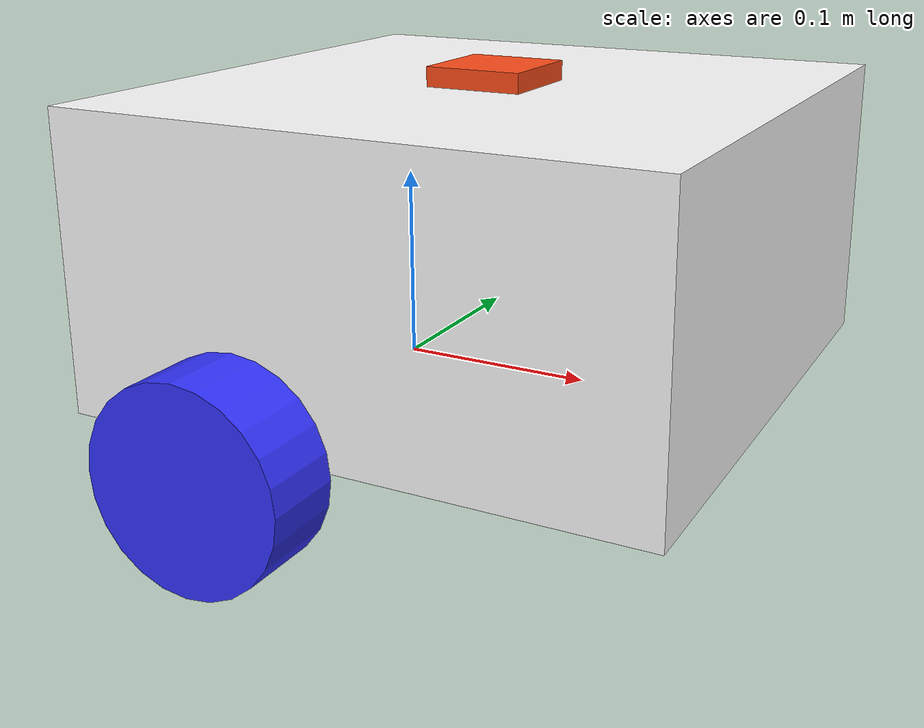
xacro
<?xml version="1.0"?>
<robot xmlns:xacro="http://www.ros.org/wiki/xacro" >

    <xacro:include filename="inertial_macros.xacro"/>

    <material name="white">
        <color rgba="1 1 1 1" />
    </material>

    <material name="orange">
        <color rgba="1 0.3 0.1 1"/>
    </material>

    <material name="blue">
        <color rgba="0.2 0.2 1 1"/>
    </material>

    <material name="black">
        <color rgba="0 0 0 1"/>
    </material>

    <!-- BASE LINK -->

    <link name="base_link">

    </link>

    <!-- CHASSIS LINK -->

    <joint name="chassis_joint" type="fixed">
        <parent link="base_link"/>
        <child link="chassis"/>
        <origin xyz="-0.1 0 0"/>
    </joint>

    <link name="chassis">
        <visual>
            <origin xyz="0.15 0 0.075"/>
            <geometry>
                <box size="0.3 0.3 0.15"/>
            </geometry>
            <material name="white"/>
        </visual>
        <collision>
            <origin xyz="0.15 0 0.075"/>
            <geometry>
                <box size="0.3 0.3 0.15"/>
            </geometry>
        </collision>
        <xacro:inertial_box mass="0.5" x="0.3" y="0.3" z="0.15">
            <origin xyz="0.15 0 0.075" rpy="0 0 0"/>
        </xacro:inertial_box>
    </link>

    <gazebo reference="chassis">
        <material>Gazebo/White</material>
    </gazebo>

    <!-- LEFT WHEEL LINK -->

    <joint name="left_wheel_joint" type="continuous">
        <parent link="base_link"/>
        <child link="left_wheel"/>
        <origin xyz="0 0.175 0" rpy="-${pi/2} 0 0" />
        <axis xyz="0 0 1"/>
    </joint>

    <link name="left_wheel">
        <visual>
            <geometry>
                <cylinder radius="0.05" length="0.04"/>
            </geometry>
            <material name="blue"/>
        </visual>
        <collision>
            <geometry>
                <cylinder radius="0.05" length="0.04"/>
            </geometry>
        </collision>
        <xacro:inertial_cylinder mass="0.1" length="0.04" radius="0.05">
            <origin xyz="0 0 0" rpy="0 0 0"/>
        </xacro:inertial_cylinder>
    </link>

    <gazebo reference="left_wheel">
        <material>Gazebo/Blue</material>
    </gazebo>

    <!-- RIGHT WHEEL LINK -->

    <joint name="right_wheel_joint" type="continuous">
        <parent link="base_link"/>
        <child link="right_wheel"/>
        <origin xyz="0 -0.175 0" rpy="${pi/2} 0 0" />
        <axis xyz="0 0 -1"/>
    </joint>

    <link name="right_wheel">
        <visual>
            <geometry>
                <cylinder radius="0.05" length="0.04"/>
            </geometry>
            <material name="blue"/>
        </visual>
        <collision>
            <geometry>
                <cylinder radius="0.05" length="0.04"/>
            </geometry>
        </collision>
        <xacro:inertial_cylinder mass="0.1" length="0.04" radius="0.05">
            <origin xyz="0 0 0" rpy="0 0 0"/>
        </xacro:inertial_cylinder>
    </link>

    <gazebo reference="right_wheel">
        <material>Gazebo/Blue</material>
    </gazebo>

    <!-- CASTER WHEEL LINK -->

    <joint name="caster_wheel_joint" type="fixed">
        <parent link="chassis"/>
        <child link="caster_wheel"/>
        <origin xyz="0.24 0 0"/>
    </joint>

    <link name="caster_wheel">
        <visual>
            <geometry>
                <sphere radius="0.05"/>
            </geometry>
            <material name="black"/>
        </visual>
        <collision>
            <geometry>
                <sphere radius="0.05"/>
            </geometry>
        </collision>
        <xacro:inertial_sphere mass="0.1" radius="0.05">
            <origin xyz="0 0 0" rpy="0 0 0"/>
        </xacro:inertial_sphere>
    </link>

    <gazebo reference="caster_wheel">
        <material>Gazebo/Black</material>
        <mu1 value="0.001"/>
        <mu2 value="0.001"/>
    </gazebo>

    <!-- UWB TAG LINK AND SENSOR -->
    <joint name="uwb_tag_joint" type="fixed">
        <parent link="chassis"/>
        <child link="uwb_tag_link"/>
        <origin xyz="0.15 0 0.15"/>
    </joint>
    <link name="uwb_tag_link">
        <visual>
            <origin xyz="0 0 0"/>
            <geometry><box size="0.05 0.05 0.02"/></geometry>
            <material name="orange"/>
        </visual>
        <collision>
            <origin xyz="0 0 0"/>
            <geometry><box size="0.05 0.05 0.02"/></geometry>
        </collision>
        <inertial>
            <mass value="0.05"/>
            <origin xyz="0 0 0" rpy="0 0 0"/>
            <inertia ixx="1e-4" ixy="0" ixz="0" iyy="1e-4" iyz="0" izz="1e-4"/>
        </inertial>
        <sensor name="uwb_range" type="range">
            <update_rate>10.0</update_rate>
            <pose>0 0 0 0 0 0</pose>
            <range>
                <min>0.1</min>
                <max>20.0</max>
                <resolution>0.01</resolution>
            </range>
            <plugin name="gazebo_ros_range" filename="libgazebo_ros_range.so">
                <ros>
                    <namespace>/uwb</namespace>
                    <remapping>~/range:=ranges</remapping>
                </ros>
                <frameName>uwb_tag_link</frameName>
            </plugin>
        </sensor>
    </link>
</robot>
